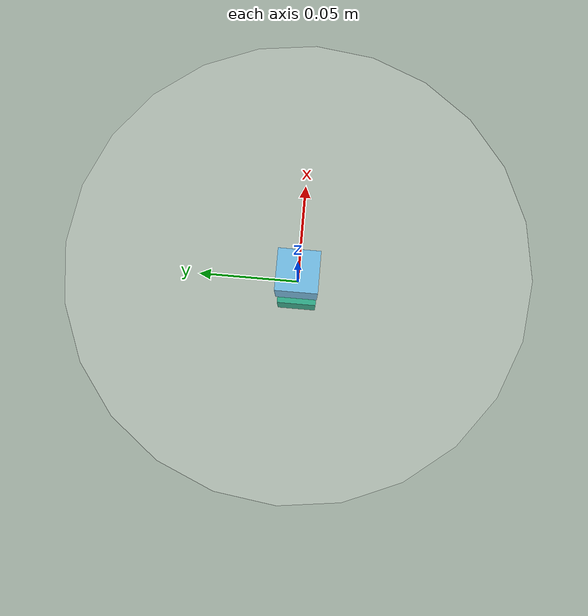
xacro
<?xml version="1.0" ?>
<robot xmlns:xacro="http://www.ros.org/wiki/xacro" name="first_robot">
    <!-- 声明 base 模块 -->
    <xacro:macro name="base_link" params="length radius">
        <link name="base_link">
            <visual>
                <geometry>
                    <cylinder length="${length}" radius="${radius}"/>
                </geometry>
                <material name="white">
                    <color rgba="1.0 1.0 1.0 0.1"/>
                </material>
            </visual>
        </link>
    </xacro:macro>
    <!-- 声明 IMU 模块 -->
    <xacro:macro name="imu_link" params="imu_name xyz">
        <link name="${imu_name}_link">
            <visual>
                <origin xyz="0 0 0" rpy="0 0 0"/>
                <geometry>
                    <box size="0.02 0.02 0.02"/>
                </geometry>
            </visual>
            <material name="black">
                <color rgba="0.0 0.0 0.0 0.5"/>
            </material>
        </link>
        <joint name="${imu_name}_joint" type="fixed">
            <parent link="base_link"/>
            <child link="${imu_name}_link"/>
            <origin xyz="${xyz}" />
        </joint>
    </xacro:macro>
    <!--传递参数调用base_link m模块-->
    <xacro:base_link length="0.1" radius="0.1"/>
    <!--传递参数调用base——link模块-->
    <xacro:imu_link imu_name="imu_up" xyz="0 0 0.02"/>
    <xacro:imu_link imu_name="imu_down" xyz="0 0 -0.02"/>
</robot>
